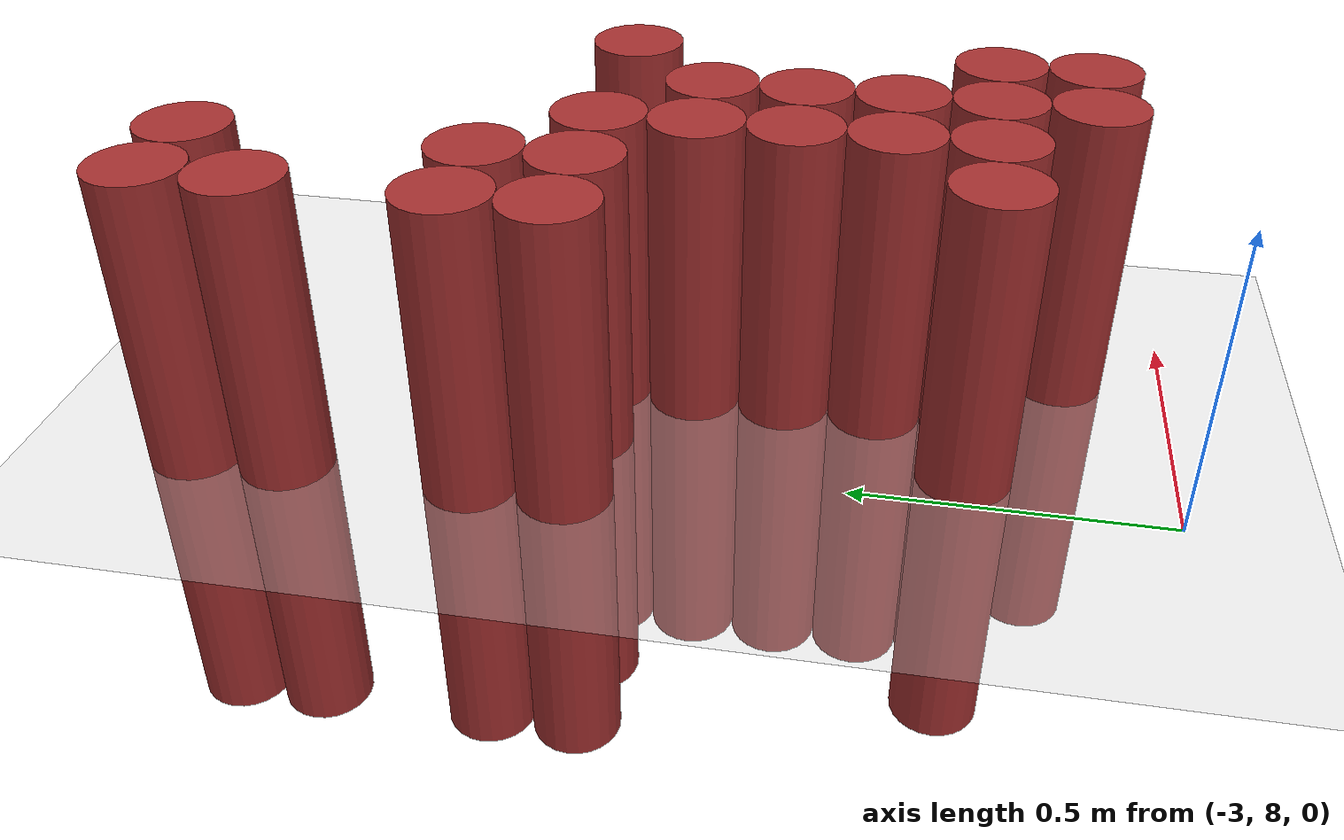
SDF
<sdf version="1.6">
 <world name="default">
  <model name="ground_plane">
   <static>1</static>
   <link name="link">
    <collision name="collision">
     <geometry><plane><normal>0 0 1</normal><size>100 100</size></plane></geometry>
     <surface><friction><ode><mu>100</mu><mu2>50</mu2></ode></friction></surface>
    </collision>
    <visual name="visual">
     <cast_shadows>0</cast_shadows>
     <geometry><plane><normal>0 0 1</normal><size>100 100</size></plane></geometry>
     <material>
      <script><uri>file://media/materials/scripts/gazebo.material</uri><name>Gazebo/Grey</name></script>
     </material>
    </visual>
   </link>
  </model>
  <model name="unit_cylinder_171">
   <static>1</static>
   <pose>-3.075000 8.925000 0.000000 0.000000 0.000000 0.000000</pose>
   <link name="link">
    <inertial>
     <mass>1</mass>
     <inertia><ixx>0.145833</ixx><ixy>0</ixy><ixz>0</ixz><iyy>0.145833</iyy><iyz>0</iyz><izz>0.125</izz></inertia>
    </inertial>
    <collision name="collision">
     <geometry><cylinder><radius>0.075000</radius><length>1</length></cylinder></geometry>
    </collision>
    <visual name="visual">
     <geometry><cylinder><radius>0.075000</radius><length>1</length></cylinder></geometry>
     <material>
      <ambient>0.648000 0.192000 0.192000 1</ambient>
      <diffuse>0.648000 0.192000 0.192000 1</diffuse>
     </material>
     <material>
      <script><name>Gazebo/Grey</name><uri>file://media/materials/scripts/gazebo.material</uri></script>
     </material>
    </visual>
    <sensor name="sensor_contact" type="contact"><contact><collision>collision</collision></contact></sensor>
   </link>
   <plugin filename="gz-sim-touchplugin-system" name="gz::sim::systems::TouchPlugin">
    <target>robot</target>
    <namespace>robot</namespace>
    <time>0.001</time>
    <enabled>true</enabled>
   </plugin>
  </model>
  <model name="unit_cylinder_172">
   <static>1</static>
   <pose>-3.075000 9.075000 0.000000 0.000000 0.000000 0.000000</pose>
   <link name="link">
    <inertial>
     <mass>1</mass>
     <inertia><ixx>0.145833</ixx><ixy>0</ixy><ixz>0</ixz><iyy>0.145833</iyy><iyz>0</iyz><izz>0.125</izz></inertia>
    </inertial>
    <collision name="collision">
     <geometry><cylinder><radius>0.075000</radius><length>1</length></cylinder></geometry>
    </collision>
    <visual name="visual">
     <geometry><cylinder><radius>0.075000</radius><length>1</length></cylinder></geometry>
     <material>
      <ambient>0.648000 0.192000 0.192000 1</ambient>
      <diffuse>0.648000 0.192000 0.192000 1</diffuse>
     </material>
     <material>
      <script><name>Gazebo/Grey</name><uri>file://media/materials/scripts/gazebo.material</uri></script>
     </material>
    </visual>
    <sensor name="sensor_contact" type="contact"><contact><collision>collision</collision></contact></sensor>
   </link>
   <plugin filename="gz-sim-touchplugin-system" name="gz::sim::systems::TouchPlugin">
    <target>robot</target>
    <namespace>robot</namespace>
    <time>0.001</time>
    <enabled>true</enabled>
   </plugin>
  </model>
  <model name="unit_cylinder_173">
   <static>1</static>
   <pose>-3.075000 9.375000 0.000000 0.000000 0.000000 0.000000</pose>
   <link name="link">
    <inertial>
     <mass>1</mass>
     <inertia><ixx>0.145833</ixx><ixy>0</ixy><ixz>0</ixz><iyy>0.145833</iyy><iyz>0</iyz><izz>0.125</izz></inertia>
    </inertial>
    <collision name="collision">
     <geometry><cylinder><radius>0.075000</radius><length>1</length></cylinder></geometry>
    </collision>
    <visual name="visual">
     <geometry><cylinder><radius>0.075000</radius><length>1</length></cylinder></geometry>
     <material>
      <ambient>0.648000 0.192000 0.192000 1</ambient>
      <diffuse>0.648000 0.192000 0.192000 1</diffuse>
     </material>
     <material>
      <script><name>Gazebo/Grey</name><uri>file://media/materials/scripts/gazebo.material</uri></script>
     </material>
    </visual>
    <sensor name="sensor_contact" type="contact"><contact><collision>collision</collision></contact></sensor>
   </link>
   <plugin filename="gz-sim-touchplugin-system" name="gz::sim::systems::TouchPlugin">
    <target>robot</target>
    <namespace>robot</namespace>
    <time>0.001</time>
    <enabled>true</enabled>
   </plugin>
  </model>
  <model name="unit_cylinder_174">
   <static>1</static>
   <pose>-3.075000 9.525000 0.000000 0.000000 0.000000 0.000000</pose>
   <link name="link">
    <inertial>
     <mass>1</mass>
     <inertia><ixx>0.145833</ixx><ixy>0</ixy><ixz>0</ixz><iyy>0.145833</iyy><iyz>0</iyz><izz>0.125</izz></inertia>
    </inertial>
    <collision name="collision">
     <geometry><cylinder><radius>0.075000</radius><length>1</length></cylinder></geometry>
    </collision>
    <visual name="visual">
     <geometry><cylinder><radius>0.075000</radius><length>1</length></cylinder></geometry>
     <material>
      <ambient>0.648000 0.192000 0.192000 1</ambient>
      <diffuse>0.648000 0.192000 0.192000 1</diffuse>
     </material>
     <material>
      <script><name>Gazebo/Grey</name><uri>file://media/materials/scripts/gazebo.material</uri></script>
     </material>
    </visual>
    <sensor name="sensor_contact" type="contact"><contact><collision>collision</collision></contact></sensor>
   </link>
   <plugin filename="gz-sim-touchplugin-system" name="gz::sim::systems::TouchPlugin">
    <target>robot</target>
    <namespace>robot</namespace>
    <time>0.001</time>
    <enabled>true</enabled>
   </plugin>
  </model>
  <model name="unit_cylinder_175">
   <static>1</static>
   <pose>-2.925000 8.325000 0.000000 0.000000 0.000000 0.000000</pose>
   <link name="link">
    <inertial>
     <mass>1</mass>
     <inertia><ixx>0.145833</ixx><ixy>0</ixy><ixz>0</ixz><iyy>0.145833</iyy><iyz>0</iyz><izz>0.125</izz></inertia>
    </inertial>
    <collision name="collision">
     <geometry><cylinder><radius>0.075000</radius><length>1</length></cylinder></geometry>
    </collision>
    <visual name="visual">
     <geometry><cylinder><radius>0.075000</radius><length>1</length></cylinder></geometry>
     <material>
      <ambient>0.648000 0.192000 0.192000 1</ambient>
      <diffuse>0.648000 0.192000 0.192000 1</diffuse>
     </material>
     <material>
      <script><name>Gazebo/Grey</name><uri>file://media/materials/scripts/gazebo.material</uri></script>
     </material>
    </visual>
    <sensor name="sensor_contact" type="contact"><contact><collision>collision</collision></contact></sensor>
   </link>
   <plugin filename="gz-sim-touchplugin-system" name="gz::sim::systems::TouchPlugin">
    <target>robot</target>
    <namespace>robot</namespace>
    <time>0.001</time>
    <enabled>true</enabled>
   </plugin>
  </model>
  <model name="unit_cylinder_176">
   <static>1</static>
   <pose>-2.925000 8.925000 0.000000 0.000000 0.000000 0.000000</pose>
   <link name="link">
    <inertial>
     <mass>1</mass>
     <inertia><ixx>0.145833</ixx><ixy>0</ixy><ixz>0</ixz><iyy>0.145833</iyy><iyz>0</iyz><izz>0.125</izz></inertia>
    </inertial>
    <collision name="collision">
     <geometry><cylinder><radius>0.075000</radius><length>1</length></cylinder></geometry>
    </collision>
    <visual name="visual">
     <geometry><cylinder><radius>0.075000</radius><length>1</length></cylinder></geometry>
     <material>
      <ambient>0.648000 0.192000 0.192000 1</ambient>
      <diffuse>0.648000 0.192000 0.192000 1</diffuse>
     </material>
     <material>
      <script><name>Gazebo/Grey</name><uri>file://media/materials/scripts/gazebo.material</uri></script>
     </material>
    </visual>
    <sensor name="sensor_contact" type="contact"><contact><collision>collision</collision></contact></sensor>
   </link>
   <plugin filename="gz-sim-touchplugin-system" name="gz::sim::systems::TouchPlugin">
    <target>robot</target>
    <namespace>robot</namespace>
    <time>0.001</time>
    <enabled>true</enabled>
   </plugin>
  </model>
  <model name="unit_cylinder_177">
   <static>1</static>
   <pose>-2.925000 9.075000 0.000000 0.000000 0.000000 0.000000</pose>
   <link name="link">
    <inertial>
     <mass>1</mass>
     <inertia><ixx>0.145833</ixx><ixy>0</ixy><ixz>0</ixz><iyy>0.145833</iyy><iyz>0</iyz><izz>0.125</izz></inertia>
    </inertial>
    <collision name="collision">
     <geometry><cylinder><radius>0.075000</radius><length>1</length></cylinder></geometry>
    </collision>
    <visual name="visual">
     <geometry><cylinder><radius>0.075000</radius><length>1</length></cylinder></geometry>
     <material>
      <ambient>0.648000 0.192000 0.192000 1</ambient>
      <diffuse>0.648000 0.192000 0.192000 1</diffuse>
     </material>
     <material>
      <script><name>Gazebo/Grey</name><uri>file://media/materials/scripts/gazebo.material</uri></script>
     </material>
    </visual>
    <sensor name="sensor_contact" type="contact"><contact><collision>collision</collision></contact></sensor>
   </link>
   <plugin filename="gz-sim-touchplugin-system" name="gz::sim::systems::TouchPlugin">
    <target>robot</target>
    <namespace>robot</namespace>
    <time>0.001</time>
    <enabled>true</enabled>
   </plugin>
  </model>
  <model name="unit_cylinder_178">
   <static>1</static>
   <pose>-2.925000 9.525000 0.000000 0.000000 0.000000 0.000000</pose>
   <link name="link">
    <inertial>
     <mass>1</mass>
     <inertia><ixx>0.145833</ixx><ixy>0</ixy><ixz>0</ixz><iyy>0.145833</iyy><iyz>0</iyz><izz>0.125</izz></inertia>
    </inertial>
    <collision name="collision">
     <geometry><cylinder><radius>0.075000</radius><length>1</length></cylinder></geometry>
    </collision>
    <visual name="visual">
     <geometry><cylinder><radius>0.075000</radius><length>1</length></cylinder></geometry>
     <material>
      <ambient>0.648000 0.192000 0.192000 1</ambient>
      <diffuse>0.648000 0.192000 0.192000 1</diffuse>
     </material>
     <material>
      <script><name>Gazebo/Grey</name><uri>file://media/materials/scripts/gazebo.material</uri></script>
     </material>
    </visual>
    <sensor name="sensor_contact" type="contact"><contact><collision>collision</collision></contact></sensor>
   </link>
   <plugin filename="gz-sim-touchplugin-system" name="gz::sim::systems::TouchPlugin">
    <target>robot</target>
    <namespace>robot</namespace>
    <time>0.001</time>
    <enabled>true</enabled>
   </plugin>
  </model>
  <model name="unit_cylinder_182">
   <static>1</static>
   <pose>-2.775000 8.325000 0.000000 0.000000 0.000000 0.000000</pose>
   <link name="link">
    <inertial>
     <mass>1</mass>
     <inertia><ixx>0.145833</ixx><ixy>0</ixy><ixz>0</ixz><iyy>0.145833</iyy><iyz>0</iyz><izz>0.125</izz></inertia>
    </inertial>
    <collision name="collision">
     <geometry><cylinder><radius>0.075000</radius><length>1</length></cylinder></geometry>
    </collision>
    <visual name="visual">
     <geometry><cylinder><radius>0.075000</radius><length>1</length></cylinder></geometry>
     <material>
      <ambient>0.648000 0.192000 0.192000 1</ambient>
      <diffuse>0.648000 0.192000 0.192000 1</diffuse>
     </material>
     <material>
      <script><name>Gazebo/Grey</name><uri>file://media/materials/scripts/gazebo.material</uri></script>
     </material>
    </visual>
    <sensor name="sensor_contact" type="contact"><contact><collision>collision</collision></contact></sensor>
   </link>
   <plugin filename="gz-sim-touchplugin-system" name="gz::sim::systems::TouchPlugin">
    <target>robot</target>
    <namespace>robot</namespace>
    <time>0.001</time>
    <enabled>true</enabled>
   </plugin>
  </model>
  <model name="unit_cylinder_183">
   <static>1</static>
   <pose>-2.775000 8.475000 0.000000 0.000000 0.000000 0.000000</pose>
   <link name="link">
    <inertial>
     <mass>1</mass>
     <inertia><ixx>0.145833</ixx><ixy>0</ixy><ixz>0</ixz><iyy>0.145833</iyy><iyz>0</iyz><izz>0.125</izz></inertia>
    </inertial>
    <collision name="collision">
     <geometry><cylinder><radius>0.075000</radius><length>1</length></cylinder></geometry>
    </collision>
    <visual name="visual">
     <geometry><cylinder><radius>0.075000</radius><length>1</length></cylinder></geometry>
     <material>
      <ambient>0.648000 0.192000 0.192000 1</ambient>
      <diffuse>0.648000 0.192000 0.192000 1</diffuse>
     </material>
     <material>
      <script><name>Gazebo/Grey</name><uri>file://media/materials/scripts/gazebo.material</uri></script>
     </material>
    </visual>
    <sensor name="sensor_contact" type="contact"><contact><collision>collision</collision></contact></sensor>
   </link>
   <plugin filename="gz-sim-touchplugin-system" name="gz::sim::systems::TouchPlugin">
    <target>robot</target>
    <namespace>robot</namespace>
    <time>0.001</time>
    <enabled>true</enabled>
   </plugin>
  </model>
  <model name="unit_cylinder_184">
   <static>1</static>
   <pose>-2.775000 8.625000 0.000000 0.000000 0.000000 0.000000</pose>
   <link name="link">
    <inertial>
     <mass>1</mass>
     <inertia><ixx>0.145833</ixx><ixy>0</ixy><ixz>0</ixz><iyy>0.145833</iyy><iyz>0</iyz><izz>0.125</izz></inertia>
    </inertial>
    <collision name="collision">
     <geometry><cylinder><radius>0.075000</radius><length>1</length></cylinder></geometry>
    </collision>
    <visual name="visual">
     <geometry><cylinder><radius>0.075000</radius><length>1</length></cylinder></geometry>
     <material>
      <ambient>0.648000 0.192000 0.192000 1</ambient>
      <diffuse>0.648000 0.192000 0.192000 1</diffuse>
     </material>
     <material>
      <script><name>Gazebo/Grey</name><uri>file://media/materials/scripts/gazebo.material</uri></script>
     </material>
    </visual>
    <sensor name="sensor_contact" type="contact"><contact><collision>collision</collision></contact></sensor>
   </link>
   <plugin filename="gz-sim-touchplugin-system" name="gz::sim::systems::TouchPlugin">
    <target>robot</target>
    <namespace>robot</namespace>
    <time>0.001</time>
    <enabled>true</enabled>
   </plugin>
  </model>
  <model name="unit_cylinder_185">
   <static>1</static>
   <pose>-2.775000 8.775000 0.000000 0.000000 0.000000 0.000000</pose>
   <link name="link">
    <inertial>
     <mass>1</mass>
     <inertia><ixx>0.145833</ixx><ixy>0</ixy><ixz>0</ixz><iyy>0.145833</iyy><iyz>0</iyz><izz>0.125</izz></inertia>
    </inertial>
    <collision name="collision">
     <geometry><cylinder><radius>0.075000</radius><length>1</length></cylinder></geometry>
    </collision>
    <visual name="visual">
     <geometry><cylinder><radius>0.075000</radius><length>1</length></cylinder></geometry>
     <material>
      <ambient>0.648000 0.192000 0.192000 1</ambient>
      <diffuse>0.648000 0.192000 0.192000 1</diffuse>
     </material>
     <material>
      <script><name>Gazebo/Grey</name><uri>file://media/materials/scripts/gazebo.material</uri></script>
     </material>
    </visual>
    <sensor name="sensor_contact" type="contact"><contact><collision>collision</collision></contact></sensor>
   </link>
   <plugin filename="gz-sim-touchplugin-system" name="gz::sim::systems::TouchPlugin">
    <target>robot</target>
    <namespace>robot</namespace>
    <time>0.001</time>
    <enabled>true</enabled>
   </plugin>
  </model>
  <model name="unit_cylinder_186">
   <static>1</static>
   <pose>-2.775000 8.925000 0.000000 0.000000 0.000000 0.000000</pose>
   <link name="link">
    <inertial>
     <mass>1</mass>
     <inertia><ixx>0.145833</ixx><ixy>0</ixy><ixz>0</ixz><iyy>0.145833</iyy><iyz>0</iyz><izz>0.125</izz></inertia>
    </inertial>
    <collision name="collision">
     <geometry><cylinder><radius>0.075000</radius><length>1</length></cylinder></geometry>
    </collision>
    <visual name="visual">
     <geometry><cylinder><radius>0.075000</radius><length>1</length></cylinder></geometry>
     <material>
      <ambient>0.648000 0.192000 0.192000 1</ambient>
      <diffuse>0.648000 0.192000 0.192000 1</diffuse>
     </material>
     <material>
      <script><name>Gazebo/Grey</name><uri>file://media/materials/scripts/gazebo.material</uri></script>
     </material>
    </visual>
    <sensor name="sensor_contact" type="contact"><contact><collision>collision</collision></contact></sensor>
   </link>
   <plugin filename="gz-sim-touchplugin-system" name="gz::sim::systems::TouchPlugin">
    <target>robot</target>
    <namespace>robot</namespace>
    <time>0.001</time>
    <enabled>true</enabled>
   </plugin>
  </model>
  <model name="unit_cylinder_193">
   <static>1</static>
   <pose>-2.625000 8.175000 0.000000 0.000000 0.000000 0.000000</pose>
   <link name="link">
    <inertial>
     <mass>1</mass>
     <inertia><ixx>0.145833</ixx><ixy>0</ixy><ixz>0</ixz><iyy>0.145833</iyy><iyz>0</iyz><izz>0.125</izz></inertia>
    </inertial>
    <collision name="collision">
     <geometry><cylinder><radius>0.075000</radius><length>1</length></cylinder></geometry>
    </collision>
    <visual name="visual">
     <geometry><cylinder><radius>0.075000</radius><length>1</length></cylinder></geometry>
     <material>
      <ambient>0.648000 0.192000 0.192000 1</ambient>
      <diffuse>0.648000 0.192000 0.192000 1</diffuse>
     </material>
     <material>
      <script><name>Gazebo/Grey</name><uri>file://media/materials/scripts/gazebo.material</uri></script>
     </material>
    </visual>
    <sensor name="sensor_contact" type="contact"><contact><collision>collision</collision></contact></sensor>
   </link>
   <plugin filename="gz-sim-touchplugin-system" name="gz::sim::systems::TouchPlugin">
    <target>robot</target>
    <namespace>robot</namespace>
    <time>0.001</time>
    <enabled>true</enabled>
   </plugin>
  </model>
  <model name="unit_cylinder_194">
   <static>1</static>
   <pose>-2.625000 8.325000 0.000000 0.000000 0.000000 0.000000</pose>
   <link name="link">
    <inertial>
     <mass>1</mass>
     <inertia><ixx>0.145833</ixx><ixy>0</ixy><ixz>0</ixz><iyy>0.145833</iyy><iyz>0</iyz><izz>0.125</izz></inertia>
    </inertial>
    <collision name="collision">
     <geometry><cylinder><radius>0.075000</radius><length>1</length></cylinder></geometry>
    </collision>
    <visual name="visual">
     <geometry><cylinder><radius>0.075000</radius><length>1</length></cylinder></geometry>
     <material>
      <ambient>0.648000 0.192000 0.192000 1</ambient>
      <diffuse>0.648000 0.192000 0.192000 1</diffuse>
     </material>
     <material>
      <script><name>Gazebo/Grey</name><uri>file://media/materials/scripts/gazebo.material</uri></script>
     </material>
    </visual>
    <sensor name="sensor_contact" type="contact"><contact><collision>collision</collision></contact></sensor>
   </link>
   <plugin filename="gz-sim-touchplugin-system" name="gz::sim::systems::TouchPlugin">
    <target>robot</target>
    <namespace>robot</namespace>
    <time>0.001</time>
    <enabled>true</enabled>
   </plugin>
  </model>
  <model name="unit_cylinder_195">
   <static>1</static>
   <pose>-2.625000 8.475000 0.000000 0.000000 0.000000 0.000000</pose>
   <link name="link">
    <inertial>
     <mass>1</mass>
     <inertia><ixx>0.145833</ixx><ixy>0</ixy><ixz>0</ixz><iyy>0.145833</iyy><iyz>0</iyz><izz>0.125</izz></inertia>
    </inertial>
    <collision name="collision">
     <geometry><cylinder><radius>0.075000</radius><length>1</length></cylinder></geometry>
    </collision>
    <visual name="visual">
     <geometry><cylinder><radius>0.075000</radius><length>1</length></cylinder></geometry>
     <material>
      <ambient>0.648000 0.192000 0.192000 1</ambient>
      <diffuse>0.648000 0.192000 0.192000 1</diffuse>
     </material>
     <material>
      <script><name>Gazebo/Grey</name><uri>file://media/materials/scripts/gazebo.material</uri></script>
     </material>
    </visual>
    <sensor name="sensor_contact" type="contact"><contact><collision>collision</collision></contact></sensor>
   </link>
   <plugin filename="gz-sim-touchplugin-system" name="gz::sim::systems::TouchPlugin">
    <target>robot</target>
    <namespace>robot</namespace>
    <time>0.001</time>
    <enabled>true</enabled>
   </plugin>
  </model>
  <model name="unit_cylinder_196">
   <static>1</static>
   <pose>-2.625000 8.625000 0.000000 0.000000 0.000000 0.000000</pose>
   <link name="link">
    <inertial>
     <mass>1</mass>
     <inertia><ixx>0.145833</ixx><ixy>0</ixy><ixz>0</ixz><iyy>0.145833</iyy><iyz>0</iyz><izz>0.125</izz></inertia>
    </inertial>
    <collision name="collision">
     <geometry><cylinder><radius>0.075000</radius><length>1</length></cylinder></geometry>
    </collision>
    <visual name="visual">
     <geometry><cylinder><radius>0.075000</radius><length>1</length></cylinder></geometry>
     <material>
      <ambient>0.648000 0.192000 0.192000 1</ambient>
      <diffuse>0.648000 0.192000 0.192000 1</diffuse>
     </material>
     <material>
      <script><name>Gazebo/Grey</name><uri>file://media/materials/scripts/gazebo.material</uri></script>
     </material>
    </visual>
    <sensor name="sensor_contact" type="contact"><contact><collision>collision</collision></contact></sensor>
   </link>
   <plugin filename="gz-sim-touchplugin-system" name="gz::sim::systems::TouchPlugin">
    <target>robot</target>
    <namespace>robot</namespace>
    <time>0.001</time>
    <enabled>true</enabled>
   </plugin>
  </model>
  <model name="unit_cylinder_197">
   <static>1</static>
   <pose>-2.625000 8.775000 0.000000 0.000000 0.000000 0.000000</pose>
   <link name="link">
    <inertial>
     <mass>1</mass>
     <inertia><ixx>0.145833</ixx><ixy>0</ixy><ixz>0</ixz><iyy>0.145833</iyy><iyz>0</iyz><izz>0.125</izz></inertia>
    </inertial>
    <collision name="collision">
     <geometry><cylinder><radius>0.075000</radius><length>1</length></cylinder></geometry>
    </collision>
    <visual name="visual">
     <geometry><cylinder><radius>0.075000</radius><length>1</length></cylinder></geometry>
     <material>
      <ambient>0.648000 0.192000 0.192000 1</ambient>
      <diffuse>0.648000 0.192000 0.192000 1</diffuse>
     </material>
     <material>
      <script><name>Gazebo/Grey</name><uri>file://media/materials/scripts/gazebo.material</uri></script>
     </material>
    </visual>
    <sensor name="sensor_contact" type="contact"><contact><collision>collision</collision></contact></sensor>
   </link>
   <plugin filename="gz-sim-touchplugin-system" name="gz::sim::systems::TouchPlugin">
    <target>robot</target>
    <namespace>robot</namespace>
    <time>0.001</time>
    <enabled>true</enabled>
   </plugin>
  </model>
  <model name="unit_cylinder_203">
   <static>1</static>
   <pose>-2.475000 8.175000 0.000000 0.000000 0.000000 0.000000</pose>
   <link name="link">
    <inertial>
     <mass>1</mass>
     <inertia><ixx>0.145833</ixx><ixy>0</ixy><ixz>0</ixz><iyy>0.145833</iyy><iyz>0</iyz><izz>0.125</izz></inertia>
    </inertial>
    <collision name="collision">
     <geometry><cylinder><radius>0.075000</radius><length>1</length></cylinder></geometry>
    </collision>
    <visual name="visual">
     <geometry><cylinder><radius>0.075000</radius><length>1</length></cylinder></geometry>
     <material>
      <ambient>0.648000 0.192000 0.192000 1</ambient>
      <diffuse>0.648000 0.192000 0.192000 1</diffuse>
     </material>
     <material>
      <script><name>Gazebo/Grey</name><uri>file://media/materials/scripts/gazebo.material</uri></script>
     </material>
    </visual>
    <sensor name="sensor_contact" type="contact"><contact><collision>collision</collision></contact></sensor>
   </link>
   <plugin filename="gz-sim-touchplugin-system" name="gz::sim::systems::TouchPlugin">
    <target>robot</target>
    <namespace>robot</namespace>
    <time>0.001</time>
    <enabled>true</enabled>
   </plugin>
  </model>
  <model name="unit_cylinder_204">
   <static>1</static>
   <pose>-2.475000 8.325000 0.000000 0.000000 0.000000 0.000000</pose>
   <link name="link">
    <inertial>
     <mass>1</mass>
     <inertia><ixx>0.145833</ixx><ixy>0</ixy><ixz>0</ixz><iyy>0.145833</iyy><iyz>0</iyz><izz>0.125</izz></inertia>
    </inertial>
    <collision name="collision">
     <geometry><cylinder><radius>0.075000</radius><length>1</length></cylinder></geometry>
    </collision>
    <visual name="visual">
     <geometry><cylinder><radius>0.075000</radius><length>1</length></cylinder></geometry>
     <material>
      <ambient>0.648000 0.192000 0.192000 1</ambient>
      <diffuse>0.648000 0.192000 0.192000 1</diffuse>
     </material>
     <material>
      <script><name>Gazebo/Grey</name><uri>file://media/materials/scripts/gazebo.material</uri></script>
     </material>
    </visual>
    <sensor name="sensor_contact" type="contact"><contact><collision>collision</collision></contact></sensor>
   </link>
   <plugin filename="gz-sim-touchplugin-system" name="gz::sim::systems::TouchPlugin">
    <target>robot</target>
    <namespace>robot</namespace>
    <time>0.001</time>
    <enabled>true</enabled>
   </plugin>
  </model>
  <model name="unit_cylinder_205">
   <static>1</static>
   <pose>-2.475000 8.925000 0.000000 0.000000 0.000000 0.000000</pose>
   <link name="link">
    <inertial>
     <mass>1</mass>
     <inertia><ixx>0.145833</ixx><ixy>0</ixy><ixz>0</ixz><iyy>0.145833</iyy><iyz>0</iyz><izz>0.125</izz></inertia>
    </inertial>
    <collision name="collision">
     <geometry><cylinder><radius>0.075000</radius><length>1</length></cylinder></geometry>
    </collision>
    <visual name="visual">
     <geometry><cylinder><radius>0.075000</radius><length>1</length></cylinder></geometry>
     <material>
      <ambient>0.648000 0.192000 0.192000 1</ambient>
      <diffuse>0.648000 0.192000 0.192000 1</diffuse>
     </material>
     <material>
      <script><name>Gazebo/Grey</name><uri>file://media/materials/scripts/gazebo.material</uri></script>
     </material>
    </visual>
    <sensor name="sensor_contact" type="contact"><contact><collision>collision</collision></contact></sensor>
   </link>
   <plugin filename="gz-sim-touchplugin-system" name="gz::sim::systems::TouchPlugin">
    <target>robot</target>
    <namespace>robot</namespace>
    <time>0.001</time>
    <enabled>true</enabled>
   </plugin>
  </model>
 </world>
</sdf>
